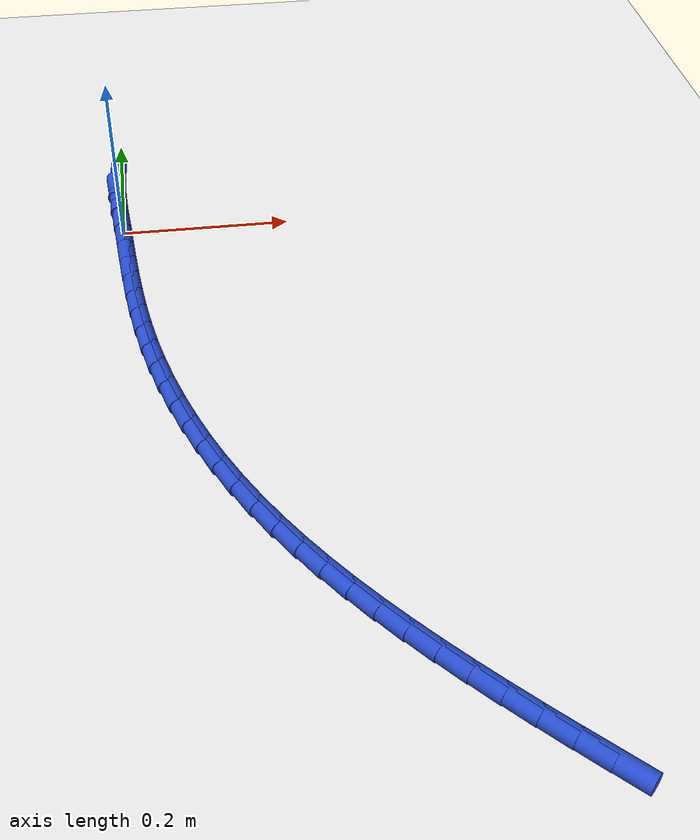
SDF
<sdf version="1.6">
 <world name="default">
  <model name="ground_plane">
   <static>1</static>
   <link name="link">
    <collision name="collision">
     <geometry><plane><normal>0 0 1</normal><size>100 100</size></plane></geometry>
     <surface><friction><ode><mu>100</mu><mu2>50</mu2></ode></friction></surface>
    </collision>
    <visual name="visual">
     <cast_shadows>0</cast_shadows>
     <geometry><plane><normal>0 0 1</normal><size>100 100</size></plane></geometry>
     <material>
      <script><uri>file://media/materials/scripts/gazebo.material</uri><name>Gazebo/WhiteGlow</name></script>
     </material>
    </visual>
   </link>
  </model>
  <model name="line">
   <link name="link_0">
    <pose>2.6020852139652106e-18 -7.632783294297951e-17 0.01 0 1.57 -1.4976919063969427</pose>
    <collision name="collision">
     <geometry><cylinder><radius>0.01</radius><length>0.08</length></cylinder></geometry>
    </collision>
    <visual name="visual">
     <material>
      <script><name>Gazebo/Blue</name><uri>file://media/materials/scripts/gazebo.material</uri></script>
     </material>
     <geometry><cylinder><radius>0.01</radius><length>0.08</length></cylinder></geometry>
    </visual>
   </link>
   <link name="link_1">
    <pose>-0.0025229704079398315 0.034450370104736915 0.01 0 1.57 -1.5170141766266896</pose>
    <collision name="collision">
     <geometry><cylinder><radius>0.01</radius><length>0.08</length></cylinder></geometry>
    </collision>
    <visual name="visual">
     <material>
      <script><name>Gazebo/Blue</name><uri>file://media/materials/scripts/gazebo.material</uri></script>
     </material>
     <geometry><cylinder><radius>0.01</radius><length>0.08</length></cylinder></geometry>
    </visual>
   </link>
   <link name="link_2">
    <pose>-0.004391296338541851 0.06915564290359918 0.01 0 1.57 -1.5589634915492212</pose>
    <collision name="collision">
     <geometry><cylinder><radius>0.01</radius><length>0.08</length></cylinder></geometry>
    </collision>
    <visual name="visual">
     <material>
      <script><name>Gazebo/Blue</name><uri>file://media/materials/scripts/gazebo.material</uri></script>
     </material>
     <geometry><cylinder><radius>0.01</radius><length>0.08</length></cylinder></geometry>
    </visual>
   </link>
   <link name="link_3">
    <pose>-0.004798241237328891 0.10354519513095031 0.01 0 1.57 1.515301293113764</pose>
    <collision name="collision">
     <geometry><cylinder><radius>0.01</radius><length>0.08</length></cylinder></geometry>
    </collision>
    <visual name="visual">
     <material>
      <script><name>Gazebo/Blue</name><uri>file://media/materials/scripts/gazebo.material</uri></script>
     </material>
     <geometry><cylinder><radius>0.01</radius><length>0.08</length></cylinder></geometry>
    </visual>
   </link>
   <link name="link_243">
    <pose>0.3652239007297616 -0.766702814810081 0.01 0 1.57 -0.7760132927918058</pose>
    <collision name="collision">
     <geometry><cylinder><radius>0.01</radius><length>0.08</length></cylinder></geometry>
    </collision>
    <visual name="visual">
     <material>
      <script><name>Gazebo/Blue</name><uri>file://media/materials/scripts/gazebo.material</uri></script>
     </material>
     <geometry><cylinder><radius>0.01</radius><length>0.08</length></cylinder></geometry>
    </visual>
   </link>
   <link name="link_244">
    <pose>0.3416979654237819 -0.7436143623456465 0.01 0 1.57 -0.7849748720468526</pose>
    <collision name="collision">
     <geometry><cylinder><radius>0.01</radius><length>0.08</length></cylinder></geometry>
    </collision>
    <visual name="visual">
     <material>
      <script><name>Gazebo/Blue</name><uri>file://media/materials/scripts/gazebo.material</uri></script>
     </material>
     <geometry><cylinder><radius>0.01</radius><length>0.08</length></cylinder></geometry>
    </visual>
   </link>
   <link name="link_245">
    <pose>0.3184533555089231 -0.720389422590404 0.01 0 1.57 -0.7967493026157773</pose>
    <collision name="collision">
     <geometry><cylinder><radius>0.01</radius><length>0.08</length></cylinder></geometry>
    </collision>
    <visual name="visual">
     <material>
      <script><name>Gazebo/Blue</name><uri>file://media/materials/scripts/gazebo.material</uri></script>
     </material>
     <geometry><cylinder><radius>0.01</radius><length>0.08</length></cylinder></geometry>
    </visual>
   </link>
   <link name="link_246">
    <pose>0.2955608198359313 -0.6969711842959648 0.01 0 1.57 -0.8113716423541557</pose>
    <collision name="collision">
     <geometry><cylinder><radius>0.01</radius><length>0.08</length></cylinder></geometry>
    </collision>
    <visual name="visual">
     <material>
      <script><name>Gazebo/Blue</name><uri>file://media/materials/scripts/gazebo.material</uri></script>
     </material>
     <geometry><cylinder><radius>0.01</radius><length>0.08</length></cylinder></geometry>
    </visual>
   </link>
   <link name="link_247">
    <pose>0.2730911072555528 -0.6733028362139412 0.01 0 1.57 -0.8288760167687371</pose>
    <collision name="collision">
     <geometry><cylinder><radius>0.01</radius><length>0.08</length></cylinder></geometry>
    </collision>
    <visual name="visual">
     <material>
      <script><name>Gazebo/Blue</name><uri>file://media/materials/scripts/gazebo.material</uri></script>
     </material>
     <geometry><cylinder><radius>0.01</radius><length>0.08</length></cylinder></geometry>
    </visual>
   </link>
   <link name="link_248">
    <pose>0.25111496661853583 -0.6493275670959465 0.01 0 1.57 -0.8492920359092355</pose>
    <collision name="collision">
     <geometry><cylinder><radius>0.01</radius><length>0.08</length></cylinder></geometry>
    </collision>
    <visual name="visual">
     <material>
      <script><name>Gazebo/Blue</name><uri>file://media/materials/scripts/gazebo.material</uri></script>
     </material>
     <geometry><cylinder><radius>0.01</radius><length>0.08</length></cylinder></geometry>
    </visual>
   </link>
   <link name="link_249">
    <pose>0.22970314677562606 -0.6249885656935924 0.01 0 1.57 -0.8726403289004285</pose>
    <collision name="collision">
     <geometry><cylinder><radius>0.01</radius><length>0.08</length></cylinder></geometry>
    </collision>
    <visual name="visual">
     <material>
      <script><name>Gazebo/Blue</name><uri>file://media/materials/scripts/gazebo.material</uri></script>
     </material>
     <geometry><cylinder><radius>0.01</radius><length>0.08</length></cylinder></geometry>
    </visual>
   </link>
   <link name="link_250">
    <pose>0.2089263965775716 -0.6002290207584928 0.01 0 1.57 -0.8989272004233457</pose>
    <collision name="collision">
     <geometry><cylinder><radius>0.01</radius><length>0.08</length></cylinder></geometry>
    </collision>
    <visual name="visual">
     <material>
      <script><name>Gazebo/Blue</name><uri>file://media/materials/scripts/gazebo.material</uri></script>
     </material>
     <geometry><cylinder><radius>0.01</radius><length>0.08</length></cylinder></geometry>
    </visual>
   </link>
   <link name="link_251">
    <pose>0.1888554648751183 -0.5749921210422585 0.01 0 1.57 -0.9281384932097145</pose>
    <collision name="collision">
     <geometry><cylinder><radius>0.01</radius><length>0.08</length></cylinder></geometry>
    </collision>
    <visual name="visual">
     <material>
      <script><name>Gazebo/Blue</name><uri>file://media/materials/scripts/gazebo.material</uri></script>
     </material>
     <geometry><cylinder><radius>0.01</radius><length>0.08</length></cylinder></geometry>
    </visual>
   </link>
   <link name="link_252">
    <pose>0.16956110051901419 -0.5492210552965039 0.01 0 1.57 -0.960232856645795</pose>
    <collision name="collision">
     <geometry><cylinder><radius>0.01</radius><length>0.08</length></cylinder></geometry>
    </collision>
    <visual name="visual">
     <material>
      <script><name>Gazebo/Blue</name><uri>file://media/materials/scripts/gazebo.material</uri></script>
     </material>
     <geometry><cylinder><radius>0.01</radius><length>0.08</length></cylinder></geometry>
    </visual>
   </link>
   <link name="link_253">
    <pose>0.15111405236000489 -0.5228590122728393 0.01 0 1.57 -0.9951347721436112</pose>
    <collision name="collision">
     <geometry><cylinder><radius>0.01</radius><length>0.08</length></cylinder></geometry>
    </collision>
    <visual name="visual">
     <material>
      <script><name>Gazebo/Blue</name><uri>file://media/materials/scripts/gazebo.material</uri></script>
     </material>
     <geometry><cylinder><radius>0.01</radius><length>0.08</length></cylinder></geometry>
    </visual>
   </link>
   <link name="link_254">
    <pose>0.13358506924883867 -0.4958491807228797 0.01 0 1.57 -1.032727859162032</pose>
    <collision name="collision">
     <geometry><cylinder><radius>0.01</radius><length>0.08</length></cylinder></geometry>
    </collision>
    <visual name="visual">
     <material>
      <script><name>Gazebo/Blue</name><uri>file://media/materials/scripts/gazebo.material</uri></script>
     </material>
     <geometry><cylinder><radius>0.01</radius><length>0.08</length></cylinder></geometry>
    </visual>
   </link>
   <link name="link_255">
    <pose>0.11704490003626136 -0.4681347493982355 0.01 0 1.57 -1.0728289267677709</pose>
    <collision name="collision">
     <geometry><cylinder><radius>0.01</radius><length>0.08</length></cylinder></geometry>
    </collision>
    <visual name="visual">
     <material>
      <script><name>Gazebo/Blue</name><uri>file://media/materials/scripts/gazebo.material</uri></script>
     </material>
     <geometry><cylinder><radius>0.01</radius><length>0.08</length></cylinder></geometry>
    </visual>
   </link>
   <link name="link_256">
    <pose>0.10156405563266438 -0.43965984209883235 0.01 0 1.57 -1.1139376616517642</pose>
    <collision name="collision">
     <geometry><cylinder><radius>0.01</radius><length>0.08</length></cylinder></geometry>
    </collision>
    <visual name="visual">
     <material>
      <script><name>Gazebo/Blue</name><uri>file://media/materials/scripts/gazebo.material</uri></script>
     </material>
     <geometry><cylinder><radius>0.01</radius><length>0.08</length></cylinder></geometry>
    </visual>
   </link>
   <link name="link_257">
    <pose>0.08719705343468535 -0.4104314332828642 0.01 0 1.57 -1.1540434038319565</pose>
    <collision name="collision">
     <geometry><cylinder><radius>0.01</radius><length>0.08</length></cylinder></geometry>
    </collision>
    <visual name="visual">
     <material>
      <script><name>Gazebo/Blue</name><uri>file://media/materials/scripts/gazebo.material</uri></script>
     </material>
     <geometry><cylinder><radius>0.01</radius><length>0.08</length></cylinder></geometry>
    </visual>
   </link>
   <link name="link_258">
    <pose>0.0739725796595613 -0.38055800772416665 0.01 0 1.57 -1.1932619825413144</pose>
    <collision name="collision">
     <geometry><cylinder><radius>0.01</radius><length>0.08</length></cylinder></geometry>
    </collision>
    <visual name="visual">
     <material>
      <script><name>Gazebo/Blue</name><uri>file://media/materials/scripts/gazebo.material</uri></script>
     </material>
     <geometry><cylinder><radius>0.01</radius><length>0.08</length></cylinder></geometry>
    </visual>
   </link>
   <link name="link_259">
    <pose>0.061916972171654906 -0.3501572786579636 0.01 0 1.57 -1.2319028364612798</pose>
    <collision name="collision">
     <geometry><cylinder><radius>0.01</radius><length>0.08</length></cylinder></geometry>
    </collision>
    <visual name="visual">
     <material>
      <script><name>Gazebo/Blue</name><uri>file://media/materials/scripts/gazebo.material</uri></script>
     </material>
     <geometry><cylinder><radius>0.01</radius><length>0.08</length></cylinder></geometry>
    </visual>
   </link>
   <link name="link_260">
    <pose>0.051056568835327255 -0.3193469593194753 0.01 0 1.57 -1.2702733653443936</pose>
    <collision name="collision">
     <geometry><cylinder><radius>0.01</radius><length>0.08</length></cylinder></geometry>
    </collision>
    <visual name="visual">
     <material>
      <script><name>Gazebo/Blue</name><uri>file://media/materials/scripts/gazebo.material</uri></script>
     </material>
     <geometry><cylinder><radius>0.01</radius><length>0.08</length></cylinder></geometry>
    </visual>
   </link>
   <link name="link_261">
    <pose>0.04141770751494088 -0.28824476294392554 0.01 0 1.57 -1.3086835586304084</pose>
    <collision name="collision">
     <geometry><cylinder><radius>0.01</radius><length>0.08</length></cylinder></geometry>
    </collision>
    <visual name="visual">
     <material>
      <script><name>Gazebo/Blue</name><uri>file://media/materials/scripts/gazebo.material</uri></script>
     </material>
     <geometry><cylinder><radius>0.01</radius><length>0.08</length></cylinder></geometry>
    </visual>
   </link>
   <link name="link_262">
    <pose>0.03302672607485704 -0.2569684027665346 0.01 0 1.57 -1.3474475809096158</pose>
    <collision name="collision">
     <geometry><cylinder><radius>0.01</radius><length>0.08</length></cylinder></geometry>
    </collision>
    <visual name="visual">
     <material>
      <script><name>Gazebo/Blue</name><uri>file://media/materials/scripts/gazebo.material</uri></script>
     </material>
     <geometry><cylinder><radius>0.01</radius><length>0.08</length></cylinder></geometry>
    </visual>
   </link>
   <link name="link_263">
    <pose>0.025909809239479255 -0.2256354319816372 0.01 0 1.57 -1.3854368298273692</pose>
    <collision name="collision">
     <geometry><cylinder><radius>0.01</radius><length>0.08</length></cylinder></geometry>
    </collision>
    <visual name="visual">
     <material>
      <script><name>Gazebo/Blue</name><uri>file://media/materials/scripts/gazebo.material</uri></script>
     </material>
     <geometry><cylinder><radius>0.01</radius><length>0.08</length></cylinder></geometry>
    </visual>
   </link>
   <link name="link_264">
    <pose>0.020034423661294792 -0.19430203970515483 0.01 0 1.57 -1.4188334774534979</pose>
    <collision name="collision">
     <geometry><cylinder><radius>0.01</radius><length>0.08</length></cylinder></geometry>
    </collision>
    <visual name="visual">
     <material>
      <script><name>Gazebo/Blue</name><uri>file://media/materials/scripts/gazebo.material</uri></script>
     </material>
     <geometry><cylinder><radius>0.01</radius><length>0.08</length></cylinder></geometry>
    </visual>
   </link>
   <link name="link_265">
    <pose>0.015220912385821978 -0.16287066162992694 0.01 0 1.57 -1.4465148391086853</pose>
    <collision name="collision">
     <geometry><cylinder><radius>0.01</radius><length>0.08</length></cylinder></geometry>
    </collision>
    <visual name="visual">
     <material>
      <script><name>Gazebo/Blue</name><uri>file://media/materials/scripts/gazebo.material</uri></script>
     </material>
     <geometry><cylinder><radius>0.01</radius><length>0.08</length></cylinder></geometry>
    </visual>
   </link>
   <link name="link_266">
    <pose>0.011266947683085381 -0.13122004106244908 0.01 0 1.57 -1.4681069073430986</pose>
    <collision name="collision">
     <geometry><cylinder><radius>0.01</radius><length>0.08</length></cylinder></geometry>
    </collision>
    <visual name="visual">
     <material>
      <script><name>Gazebo/Blue</name><uri>file://media/materials/scripts/gazebo.material</uri></script>
     </material>
     <geometry><cylinder><radius>0.01</radius><length>0.08</length></cylinder></geometry>
    </visual>
   </link>
   <link name="link_267">
    <pose>0.007970201823110106 -0.09922892130922067 0.01 0 1.57 -1.4834504785378904</pose>
    <collision name="collision">
     <geometry><cylinder><radius>0.01</radius><length>0.08</length></cylinder></geometry>
    </collision>
    <visual name="visual">
     <material>
      <script><name>Gazebo/Blue</name><uri>file://media/materials/scripts/gazebo.material</uri></script>
     </material>
     <geometry><cylinder><radius>0.01</radius><length>0.08</length></cylinder></geometry>
    </visual>
   </link>
   <link name="link_268">
    <pose>0.005128347075920884 -0.06677604567673823 0.01 0 1.57 -1.4925780967861655</pose>
    <collision name="collision">
     <geometry><cylinder><radius>0.01</radius><length>0.08</length></cylinder></geometry>
    </collision>
    <visual name="visual">
     <material>
      <script><name>Gazebo/Blue</name><uri>file://media/materials/scripts/gazebo.material</uri></script>
     </material>
     <geometry><cylinder><radius>0.01</radius><length>0.08</length></cylinder></geometry>
    </visual>
   </link>
   <link name="link_269">
    <pose>0.002539055711542512 -0.03374015747149824 0.01 0 1.57 -1.4956846738003682</pose>
    <collision name="collision">
     <geometry><cylinder><radius>0.01</radius><length>0.08</length></cylinder></geometry>
    </collision>
    <visual name="visual">
     <material>
      <script><name>Gazebo/Blue</name><uri>file://media/materials/scripts/gazebo.material</uri></script>
     </material>
     <geometry><cylinder><radius>0.01</radius><length>0.08</length></cylinder></geometry>
    </visual>
   </link>
   <link name="link_270">
    <pose>9.107298248878237e-18 -1.6653345369377348e-16 0.01 0 1.57 -1.4930970108851767</pose>
    <collision name="collision">
     <geometry><cylinder><radius>0.01</radius><length>0.08</length></cylinder></geometry>
    </collision>
    <visual name="visual">
     <material>
      <script><name>Gazebo/Blue</name><uri>file://media/materials/scripts/gazebo.material</uri></script>
     </material>
     <geometry><cylinder><radius>0.01</radius><length>0.08</length></cylinder></geometry>
    </visual>
   </link>
   <link name="link_271">
    <pose>-0.0026911477886819206 0.03456568343126055 0.01 0 1.57 -1.4852451351550415</pose>
    <collision name="collision">
     <geometry><cylinder><radius>0.01</radius><length>0.08</length></cylinder></geometry>
    </collision>
    <visual name="visual">
     <material>
      <script><name>Gazebo/Blue</name><uri>file://media/materials/scripts/gazebo.material</uri></script>
     </material>
     <geometry><cylinder><radius>0.01</radius><length>0.08</length></cylinder></geometry>
    </visual>
   </link>
   <link name="link_272">
    <pose>-0.005736715384478348 0.07007814951578538 0.01 0 1.57 -1.4891167711547655</pose>
    <collision name="collision">
     <geometry><cylinder><radius>0.01</radius><length>0.08</length></cylinder></geometry>
    </collision>
    <visual name="visual">
     <material>
      <script><name>Gazebo/Blue</name><uri>file://media/materials/scripts/gazebo.material</uri></script>
     </material>
     <geometry><cylinder><radius>0.01</radius><length>0.08</length></cylinder></geometry>
    </visual>
   </link>
  </model>
 </world>
</sdf>
